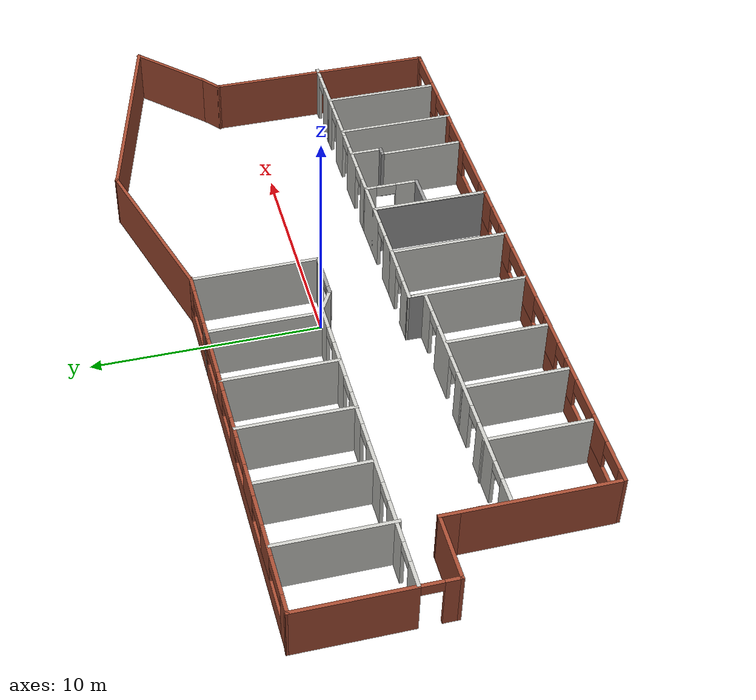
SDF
<sdf version="1.6">
 <world name="__default__">
  <model name="plantaHospital">
   <pose>1.23652 -0.630061 0 0 -0 0</pose>
   <link name="Wall_0">
    <pose>-5.58315 -7.9482 0 0 -0 0</pose>
    <visual name="Wall_0_Visual_0">
     <pose>-8.32751 0 1.25 0 -0 0</pose>
     <geometry><box><size>0.594984 0.15 2.5</size></box></geometry>
     <material>
      <script><uri>file://media/materials/scripts/gazebo.material</uri><name>Gazebo/Bricks</name></script>
      <ambient>1 1 1 1</ambient>
     </material>
    </visual>
    <collision name="Wall_0_Collision_0">
     <geometry><box><size>0.594984 0.15 2.5</size></box></geometry>
     <pose>-8.32751 0 1.25 0 -0 0</pose>
    </collision>
    <visual name="Wall_0_Visual_1">
     <pose>0.297492 0 0.5 0 -0 0</pose>
     <geometry><box><size>16.655 0.15 1</size></box></geometry>
     <material>
      <script><uri>file://media/materials/scripts/gazebo.material</uri><name>Gazebo/Bricks</name></script>
      <ambient>1 1 1 1</ambient>
     </material>
    </visual>
    <collision name="Wall_0_Collision_1">
     <geometry><box><size>16.655 0.15 1</size></box></geometry>
     <pose>0.297492 0 0.5 0 -0 0</pose>
    </collision>
    <visual name="Wall_0_Visual_2">
     <pose>-5.8979 0 1.75 0 -0 0</pose>
     <geometry><box><size>1.44064 0.15 1.5</size></box></geometry>
     <material>
      <script><uri>file://media/materials/scripts/gazebo.material</uri><name>Gazebo/Bricks</name></script>
      <ambient>1 1 1 1</ambient>
     </material>
    </visual>
    <collision name="Wall_0_Collision_2">
     <geometry><box><size>1.44064 0.15 1.5</size></box></geometry>
     <pose>-5.8979 0 1.75 0 -0 0</pose>
    </collision>
    <visual name="Wall_0_Visual_3">
     <pose>-2.67137 0 1.75 0 -0 0</pose>
     <geometry><box><size>1.22519 0.15 1.5</size></box></geometry>
     <material>
      <script><uri>file://media/materials/scripts/gazebo.material</uri><name>Gazebo/Bricks</name></script>
      <ambient>1 1 1 1</ambient>
     </material>
    </visual>
    <collision name="Wall_0_Collision_3">
     <geometry><box><size>1.22519 0.15 1.5</size></box></geometry>
     <pose>-2.67137 0 1.75 0 -0 0</pose>
    </collision>
    <visual name="Wall_0_Visual_4">
     <pose>-0.362931 0 1.75 0 -0 0</pose>
     <geometry><box><size>1.61261 0.15 1.5</size></box></geometry>
     <material>
      <script><uri>file://media/materials/scripts/gazebo.material</uri><name>Gazebo/Bricks</name></script>
      <ambient>1 1 1 1</ambient>
     </material>
    </visual>
    <collision name="Wall_0_Collision_4">
     <geometry><box><size>1.61261 0.15 1.5</size></box></geometry>
     <pose>-0.362931 0 1.75 0 -0 0</pose>
    </collision>
    <visual name="Wall_0_Visual_5">
     <pose>2.42997 0 1.75 0 -0 0</pose>
     <geometry><box><size>1.67518 0.15 1.5</size></box></geometry>
     <material>
      <script><uri>file://media/materials/scripts/gazebo.material</uri><name>Gazebo/Bricks</name></script>
      <ambient>1 1 1 1</ambient>
     </material>
    </visual>
    <collision name="Wall_0_Collision_5">
     <geometry><box><size>1.67518 0.15 1.5</size></box></geometry>
     <pose>2.42997 0 1.75 0 -0 0</pose>
    </collision>
    <visual name="Wall_0_Visual_6">
     <pose>5.5674 0 1.75 0 -0 0</pose>
     <geometry><box><size>1.59168 0.15 1.5</size></box></geometry>
     <material>
      <script><uri>file://media/materials/scripts/gazebo.material</uri><name>Gazebo/Bricks</name></script>
      <ambient>1 1 1 1</ambient>
     </material>
    </visual>
    <collision name="Wall_0_Collision_6">
     <geometry><box><size>1.59168 0.15 1.5</size></box></geometry>
     <pose>5.5674 0 1.75 0 -0 0</pose>
    </collision>
    <visual name="Wall_0_Visual_7">
     <pose>8.07412 0 1.75 0 -0 0</pose>
     <geometry><box><size>1.10176 0.15 1.5</size></box></geometry>
     <material>
      <script><uri>file://media/materials/scripts/gazebo.material</uri><name>Gazebo/Bricks</name></script>
      <ambient>1 1 1 1</ambient>
     </material>
    </visual>
    <collision name="Wall_0_Collision_7">
     <geometry><box><size>1.10176 0.15 1.5</size></box></geometry>
     <pose>8.07412 0 1.75 0 -0 0</pose>
    </collision>
    <visual name="Wall_0_Visual_8">
     <pose>-7.32411 0 2.15 0 -0 0</pose>
     <geometry><box><size>1.4118 0.15 0.7</size></box></geometry>
     <material>
      <script><uri>file://media/materials/scripts/gazebo.material</uri><name>Gazebo/Bricks</name></script>
      <ambient>1 1 1 1</ambient>
     </material>
    </visual>
    <collision name="Wall_0_Collision_8">
     <geometry><box><size>1.4118 0.15 0.7</size></box></geometry>
     <pose>-7.32411 0 2.15 0 -0 0</pose>
    </collision>
    <visual name="Wall_0_Visual_9">
     <pose>-4.23077 0 2.15 0 -0 0</pose>
     <geometry><box><size>1.8936 0.15 0.7</size></box></geometry>
     <material>
      <script><uri>file://media/materials/scripts/gazebo.material</uri><name>Gazebo/Bricks</name></script>
      <ambient>1 1 1 1</ambient>
     </material>
    </visual>
    <collision name="Wall_0_Collision_9">
     <geometry><box><size>1.8936 0.15 0.7</size></box></geometry>
     <pose>-4.23077 0 2.15 0 -0 0</pose>
    </collision>
    <visual name="Wall_0_Visual_10">
     <pose>-1.61401 0 2.15 0 -0 0</pose>
     <geometry><box><size>0.889543 0.15 0.7</size></box></geometry>
     <material>
      <script><uri>file://media/materials/scripts/gazebo.material</uri><name>Gazebo/Bricks</name></script>
      <ambient>1 1 1 1</ambient>
     </material>
    </visual>
    <collision name="Wall_0_Collision_10">
     <geometry><box><size>0.889543 0.15 0.7</size></box></geometry>
     <pose>-1.61401 0 2.15 0 -0 0</pose>
    </collision>
    <visual name="Wall_0_Visual_11">
     <pose>1.01787 0 2.15 0 -0 0</pose>
     <geometry><box><size>1.149 0.15 0.7</size></box></geometry>
     <material>
      <script><uri>file://media/materials/scripts/gazebo.material</uri><name>Gazebo/Bricks</name></script>
      <ambient>1 1 1 1</ambient>
     </material>
    </visual>
    <collision name="Wall_0_Collision_11">
     <geometry><box><size>1.149 0.15 0.7</size></box></geometry>
     <pose>1.01787 0 2.15 0 -0 0</pose>
    </collision>
    <visual name="Wall_0_Visual_12">
     <pose>4.01956 0 2.15 0 -0 0</pose>
     <geometry><box><size>1.504 0.15 0.7</size></box></geometry>
     <material>
      <script><uri>file://media/materials/scripts/gazebo.material</uri><name>Gazebo/Bricks</name></script>
      <ambient>1 1 1 1</ambient>
     </material>
    </visual>
    <collision name="Wall_0_Collision_12">
     <geometry><box><size>1.504 0.15 0.7</size></box></geometry>
     <pose>4.01956 0 2.15 0 -0 0</pose>
    </collision>
    <visual name="Wall_0_Visual_13">
     <pose>6.94324 0 2.15 0 -0 0</pose>
     <geometry><box><size>1.16 0.15 0.7</size></box></geometry>
     <material>
      <script><uri>file://media/materials/scripts/gazebo.material</uri><name>Gazebo/Bricks</name></script>
      <ambient>1 1 1 1</ambient>
     </material>
    </visual>
    <collision name="Wall_0_Collision_13">
     <geometry><box><size>1.16 0.15 0.7</size></box></geometry>
     <pose>6.94324 0 2.15 0 -0 0</pose>
    </collision>
   </link>
   <link name="Wall_1">
    <collision name="Wall_1_Collision">
     <geometry><box><size>5.26208 0.15 2.5</size></box></geometry>
     <pose>0 0 1.25 0 -0 0</pose>
    </collision>
    <visual name="Wall_1_Visual">
     <pose>0 0 1.25 0 -0 0</pose>
     <geometry><box><size>5.26208 0.15 2.5</size></box></geometry>
     <material>
      <script><uri>file://media/materials/scripts/gazebo.material</uri><name>Gazebo/Grey</name></script>
      <ambient>1 1 1 1</ambient>
     </material>
    </visual>
    <pose>2.98099 -5.39218 0 0 -0 1.56154</pose>
   </link>
   <link name="Wall_10">
    <collision name="Wall_10_Collision">
     <geometry><box><size>7.58154 0.15 2.5</size></box></geometry>
     <pose>0 0 1.25 0 -0 0</pose>
    </collision>
    <visual name="Wall_10_Visual">
     <pose>0 0 1.25 0 -0 0</pose>
     <geometry><box><size>7.58154 0.15 2.5</size></box></geometry>
     <material>
      <script><uri>file://media/materials/scripts/gazebo.material</uri><name>Gazebo/Bricks</name></script>
      <ambient>1 1 1 1</ambient>
     </material>
    </visual>
    <pose>4.1166 6.92582 0 0 -0 0.277983</pose>
   </link>
   <link name="Wall_11">
    <collision name="Wall_11_Collision">
     <geometry><box><size>9.75 0.15 2.5</size></box></geometry>
     <pose>0 0 1.25 0 -0 0</pose>
    </collision>
    <visual name="Wall_11_Visual">
     <pose>0 0 1.25 0 -0 0</pose>
     <geometry><box><size>9.75 0.15 2.5</size></box></geometry>
     <material>
      <script><uri>file://media/materials/scripts/gazebo.material</uri><name>Gazebo/Bricks</name></script>
      <ambient>1 1 1 1</ambient>
     </material>
    </visual>
    <pose>12.3261 6.70315 0 0 0 -0.261799</pose>
   </link>
   <link name="Wall_12">
    <collision name="Wall_12_Collision">
     <geometry><box><size>4 0.15 2.5</size></box></geometry>
     <pose>0 0 1.25 0 -0 0</pose>
    </collision>
    <visual name="Wall_12_Visual">
     <pose>0 0 1.25 0 -0 0</pose>
     <geometry><box><size>4 0.15 2.5</size></box></geometry>
     <material>
      <script><uri>file://media/materials/scripts/gazebo.material</uri><name>Gazebo/Bricks</name></script>
      <ambient>1 1 1 1</ambient>
     </material>
    </visual>
    <pose>15.6014 4.09964 0 0 0 -2.35619</pose>
   </link>
   <link name="Wall_13">
    <collision name="Wall_13_Collision">
     <geometry><box><size>1.09421 0.15 2.5</size></box></geometry>
     <pose>0 0 1.25 0 -0 0</pose>
    </collision>
    <visual name="Wall_13_Visual">
     <pose>0 0 1.25 0 -0 0</pose>
     <geometry><box><size>1.09421 0.15 2.5</size></box></geometry>
     <material>
      <script><uri>file://media/materials/scripts/gazebo.material</uri><name>Gazebo/Bricks</name></script>
      <ambient>1 1 1 1</ambient>
     </material>
    </visual>
    <pose>13.8763 2.43768 0 0 0 -2.45088</pose>
   </link>
   <link name="Wall_14">
    <collision name="Wall_14_Collision">
     <geometry><box><size>10.25 0.15 2.5</size></box></geometry>
     <pose>0 0 1.25 0 -0 0</pose>
    </collision>
    <visual name="Wall_14_Visual">
     <pose>0 0 1.25 0 -0 0</pose>
     <geometry><box><size>10.25 0.15 2.5</size></box></geometry>
     <material>
      <script><uri>file://media/materials/scripts/gazebo.material</uri><name>Gazebo/Bricks</name></script>
      <ambient>1 1 1 1</ambient>
     </material>
    </visual>
    <pose>13.5461 -2.91309 0 0 0 -1.5708</pose>
   </link>
   <link name="Wall_15">
    <pose>8.23489 -7.95565 0 0 -0 3.14018</pose>
    <visual name="Wall_15_Visual_0">
     <pose>-5.17388 0 1.25 0 -0 0</pose>
     <geometry><box><size>0.357329 0.15 2.5</size></box></geometry>
     <material>
      <script><uri>file://media/materials/scripts/gazebo.material</uri><name>Gazebo/Bricks</name></script>
      <ambient>1 1 1 1</ambient>
     </material>
    </visual>
    <collision name="Wall_15_Collision_0">
     <geometry><box><size>0.357329 0.15 2.5</size></box></geometry>
     <pose>-5.17388 0 1.25 0 -0 0</pose>
    </collision>
    <visual name="Wall_15_Visual_1">
     <pose>0.178664 0 0.5 0 -0 0</pose>
     <geometry><box><size>10.3478 0.15 1</size></box></geometry>
     <material>
      <script><uri>file://media/materials/scripts/gazebo.material</uri><name>Gazebo/Bricks</name></script>
      <ambient>1 1 1 1</ambient>
     </material>
    </visual>
    <collision name="Wall_15_Collision_1">
     <geometry><box><size>10.3478 0.15 1</size></box></geometry>
     <pose>0.178664 0 0.5 0 -0 0</pose>
    </collision>
    <visual name="Wall_15_Visual_2">
     <pose>-2.66907 0 1.75 0 -0 0</pose>
     <geometry><box><size>1.05359 0.15 1.5</size></box></geometry>
     <material>
      <script><uri>file://media/materials/scripts/gazebo.material</uri><name>Gazebo/Bricks</name></script>
      <ambient>1 1 1 1</ambient>
     </material>
    </visual>
    <collision name="Wall_15_Collision_2">
     <geometry><box><size>1.05359 0.15 1.5</size></box></geometry>
     <pose>-2.66907 0 1.75 0 -0 0</pose>
    </collision>
    <visual name="Wall_15_Visual_3">
     <pose>-0.392324 0 1.75 0 -0 0</pose>
     <geometry><box><size>0.978199 0.15 1.5</size></box></geometry>
     <material>
      <script><uri>file://media/materials/scripts/gazebo.material</uri><name>Gazebo/Bricks</name></script>
      <ambient>1 1 1 1</ambient>
     </material>
    </visual>
    <collision name="Wall_15_Collision_3">
     <geometry><box><size>0.978199 0.15 1.5</size></box></geometry>
     <pose>-0.392324 0 1.75 0 -0 0</pose>
    </collision>
    <visual name="Wall_15_Visual_4">
     <pose>1.8838 0 1.75 0 -0 0</pose>
     <geometry><box><size>0.67604 0.15 1.5</size></box></geometry>
     <material>
      <script><uri>file://media/materials/scripts/gazebo.material</uri><name>Gazebo/Bricks</name></script>
      <ambient>1 1 1 1</ambient>
     </material>
    </visual>
    <collision name="Wall_15_Collision_4">
     <geometry><box><size>0.67604 0.15 1.5</size></box></geometry>
     <pose>1.8838 0 1.75 0 -0 0</pose>
    </collision>
    <visual name="Wall_15_Visual_5">
     <pose>4.93818 0 1.75 0 -0 0</pose>
     <geometry><box><size>0.828732 0.15 1.5</size></box></geometry>
     <material>
      <script><uri>file://media/materials/scripts/gazebo.material</uri><name>Gazebo/Bricks</name></script>
      <ambient>1 1 1 1</ambient>
     </material>
    </visual>
    <collision name="Wall_15_Collision_5">
     <geometry><box><size>0.828732 0.15 1.5</size></box></geometry>
     <pose>4.93818 0 1.75 0 -0 0</pose>
    </collision>
    <visual name="Wall_15_Visual_6">
     <pose>-4.09555 0 2.15 0 -0 0</pose>
     <geometry><box><size>1.79935 0.15 0.7</size></box></geometry>
     <material>
      <script><uri>file://media/materials/scripts/gazebo.material</uri><name>Gazebo/Bricks</name></script>
      <ambient>1 1 1 1</ambient>
     </material>
    </visual>
    <collision name="Wall_15_Collision_6">
     <geometry><box><size>1.79935 0.15 0.7</size></box></geometry>
     <pose>-4.09555 0 2.15 0 -0 0</pose>
    </collision>
    <visual name="Wall_15_Visual_7">
     <pose>-1.51185 0 2.15 0 -0 0</pose>
     <geometry><box><size>1.26085 0.15 0.7</size></box></geometry>
     <material>
      <script><uri>file://media/materials/scripts/gazebo.material</uri><name>Gazebo/Bricks</name></script>
      <ambient>1 1 1 1</ambient>
     </material>
    </visual>
    <collision name="Wall_15_Collision_7">
     <geometry><box><size>1.26085 0.15 0.7</size></box></geometry>
     <pose>-1.51185 0 2.15 0 -0 0</pose>
    </collision>
    <visual name="Wall_15_Visual_8">
     <pose>0.821275 0 2.15 0 -0 0</pose>
     <geometry><box><size>1.449 0.15 0.7</size></box></geometry>
     <material>
      <script><uri>file://media/materials/scripts/gazebo.material</uri><name>Gazebo/Bricks</name></script>
      <ambient>1 1 1 1</ambient>
     </material>
    </visual>
    <collision name="Wall_15_Collision_8">
     <geometry><box><size>1.449 0.15 0.7</size></box></geometry>
     <pose>0.821275 0 2.15 0 -0 0</pose>
    </collision>
    <visual name="Wall_15_Visual_9">
     <pose>3.37282 0 2.15 0 -0 0</pose>
     <geometry><box><size>2.302 0.15 0.7</size></box></geometry>
     <material>
      <script><uri>file://media/materials/scripts/gazebo.material</uri><name>Gazebo/Bricks</name></script>
      <ambient>1 1 1 1</ambient>
     </material>
    </visual>
    <collision name="Wall_15_Collision_9">
     <geometry><box><size>2.302 0.15 0.7</size></box></geometry>
     <pose>3.37282 0 2.15 0 -0 0</pose>
    </collision>
   </link>
   <link name="Wall_19">
    <collision name="Wall_19_Collision">
     <geometry><box><size>5 0.15 2.5</size></box></geometry>
     <pose>0 0 1.25 0 -0 0</pose>
    </collision>
    <visual name="Wall_19_Visual">
     <pose>0 0 1.25 0 -0 0</pose>
     <geometry><box><size>5 0.15 2.5</size></box></geometry>
     <material>
      <script><uri>file://media/materials/scripts/gazebo.material</uri><name>Gazebo/CeilingTiled</name></script>
      <ambient>1 1 1 1</ambient>
     </material>
    </visual>
    <pose>-2.78323 3.42673 0 0 0 -1.5708</pose>
   </link>
   <link name="Wall_23">
    <collision name="Wall_23_Collision">
     <geometry><box><size>5.5 0.15 2.5</size></box></geometry>
     <pose>0 0 1.25 0 -0 0</pose>
    </collision>
    <visual name="Wall_23_Visual">
     <pose>0 0 1.25 0 -0 0</pose>
     <geometry><box><size>5.5 0.15 2.5</size></box></geometry>
     <material>
      <script><uri>file://media/materials/scripts/gazebo.material</uri><name>Gazebo/CeilingTiled</name></script>
      <ambient>1 1 1 1</ambient>
     </material>
    </visual>
    <pose>0.459625 3.04374 0 0 -0 1.5708</pose>
   </link>
   <link name="Wall_26">
    <pose>-0.590375 0.368744 0 0 -0 3.14159</pose>
    <visual name="Wall_26_Visual_0">
     <pose>-0.652263 0 1.25 0 -0 0</pose>
     <geometry><box><size>0.945474 0.15 2.5</size></box></geometry>
     <material>
      <script><uri>file://media/materials/scripts/gazebo.material</uri><name>Gazebo/Grey</name></script>
      <ambient>1 1 1 1</ambient>
     </material>
    </visual>
    <collision name="Wall_26_Collision_0">
     <geometry><box><size>0.945474 0.15 2.5</size></box></geometry>
     <pose>-0.652263 0 1.25 0 -0 0</pose>
    </collision>
    <visual name="Wall_26_Visual_1">
     <pose>0.922737 0 1.25 0 -0 0</pose>
     <geometry><box><size>0.404526 0.15 2.5</size></box></geometry>
     <material>
      <script><uri>file://media/materials/scripts/gazebo.material</uri><name>Gazebo/Grey</name></script>
      <ambient>1 1 1 1</ambient>
     </material>
    </visual>
    <collision name="Wall_26_Collision_1">
     <geometry><box><size>0.404526 0.15 2.5</size></box></geometry>
     <pose>0.922737 0 1.25 0 -0 0</pose>
    </collision>
    <visual name="Wall_26_Visual_2">
     <pose>0.270474 0 2.25 0 -0 0</pose>
     <geometry><box><size>0.9 0.15 0.5</size></box></geometry>
     <material>
      <script><uri>file://media/materials/scripts/gazebo.material</uri><name>Gazebo/Grey</name></script>
      <ambient>1 1 1 1</ambient>
     </material>
    </visual>
    <collision name="Wall_26_Collision_2">
     <geometry><box><size>0.9 0.15 0.5</size></box></geometry>
     <pose>0.270474 0 2.25 0 -0 0</pose>
    </collision>
   </link>
   <link name="Wall_27">
    <collision name="Wall_27_Collision">
     <geometry><box><size>1.25 0.15 2.5</size></box></geometry>
     <pose>0 0 1.25 0 -0 0</pose>
    </collision>
    <visual name="Wall_27_Visual">
     <pose>0 0 1.25 0 -0 0</pose>
     <geometry><box><size>1.25 0.15 2.5</size></box></geometry>
     <material>
      <script><uri>file://media/materials/scripts/gazebo.material</uri><name>Gazebo/CeilingTiled</name></script>
      <ambient>1 1 1 1</ambient>
     </material>
    </visual>
    <pose>-2.11669 0.643744 0 0 -0 2.61799</pose>
   </link>
   <link name="Wall_28">
    <pose>-9.768 0.918744 0 0 -0 3.14159</pose>
    <visual name="Wall_28_Visual_0">
     <pose>-6.67188 0 1.25 0 -0 0</pose>
     <geometry><box><size>1.15625 0.15 2.5</size></box></geometry>
     <material>
      <script><uri>file://media/materials/scripts/gazebo.material</uri><name>Gazebo/CeilingTiled</name></script>
      <ambient>1 1 1 1</ambient>
     </material>
    </visual>
    <collision name="Wall_28_Collision_0">
     <geometry><box><size>1.15625 0.15 2.5</size></box></geometry>
     <pose>-6.67188 0 1.25 0 -0 0</pose>
    </collision>
    <visual name="Wall_28_Visual_1">
     <pose>-4.23031 0 1.25 0 -0 0</pose>
     <geometry><box><size>1.92688 0.15 2.5</size></box></geometry>
     <material>
      <script><uri>file://media/materials/scripts/gazebo.material</uri><name>Gazebo/CeilingTiled</name></script>
      <ambient>1 1 1 1</ambient>
     </material>
    </visual>
    <collision name="Wall_28_Collision_1">
     <geometry><box><size>1.92688 0.15 2.5</size></box></geometry>
     <pose>-4.23031 0 1.25 0 -0 0</pose>
    </collision>
    <visual name="Wall_28_Visual_2">
     <pose>-1.50521 0 1.25 0 -0 0</pose>
     <geometry><box><size>1.72333 0.15 2.5</size></box></geometry>
     <material>
      <script><uri>file://media/materials/scripts/gazebo.material</uri><name>Gazebo/CeilingTiled</name></script>
      <ambient>1 1 1 1</ambient>
     </material>
    </visual>
    <collision name="Wall_28_Collision_2">
     <geometry><box><size>1.72333 0.15 2.5</size></box></geometry>
     <pose>-1.50521 0 1.25 0 -0 0</pose>
    </collision>
    <visual name="Wall_28_Visual_3">
     <pose>1.30358 0 1.25 0 -0 0</pose>
     <geometry><box><size>2.09425 0.15 2.5</size></box></geometry>
     <material>
      <script><uri>file://media/materials/scripts/gazebo.material</uri><name>Gazebo/CeilingTiled</name></script>
      <ambient>1 1 1 1</ambient>
     </material>
    </visual>
    <collision name="Wall_28_Collision_3">
     <geometry><box><size>2.09425 0.15 2.5</size></box></geometry>
     <pose>1.30358 0 1.25 0 -0 0</pose>
    </collision>
    <visual name="Wall_28_Visual_4">
     <pose>4.23055 0 1.25 0 -0 0</pose>
     <geometry><box><size>1.95968 0.15 2.5</size></box></geometry>
     <material>
      <script><uri>file://media/materials/scripts/gazebo.material</uri><name>Gazebo/CeilingTiled</name></script>
      <ambient>1 1 1 1</ambient>
     </material>
    </visual>
    <collision name="Wall_28_Collision_4">
     <geometry><box><size>1.95968 0.15 2.5</size></box></geometry>
     <pose>4.23055 0 1.25 0 -0 0</pose>
    </collision>
    <visual name="Wall_28_Visual_5">
     <pose>6.6802 0 1.25 0 -0 0</pose>
     <geometry><box><size>1.13961 0.15 2.5</size></box></geometry>
     <material>
      <script><uri>file://media/materials/scripts/gazebo.material</uri><name>Gazebo/CeilingTiled</name></script>
      <ambient>1 1 1 1</ambient>
     </material>
    </visual>
    <collision name="Wall_28_Collision_5">
     <geometry><box><size>1.13961 0.15 2.5</size></box></geometry>
     <pose>6.6802 0 1.25 0 -0 0</pose>
    </collision>
    <visual name="Wall_28_Visual_6">
     <pose>-5.64375 0 2.25 0 -0 0</pose>
     <geometry><box><size>0.9 0.15 0.5</size></box></geometry>
     <material>
      <script><uri>file://media/materials/scripts/gazebo.material</uri><name>Gazebo/CeilingTiled</name></script>
      <ambient>1 1 1 1</ambient>
     </material>
    </visual>
    <collision name="Wall_28_Collision_6">
     <geometry><box><size>0.9 0.15 0.5</size></box></geometry>
     <pose>-5.64375 0 2.25 0 -0 0</pose>
    </collision>
    <visual name="Wall_28_Visual_7">
     <pose>-2.81687 0 2.25 0 -0 0</pose>
     <geometry><box><size>0.9 0.15 0.5</size></box></geometry>
     <material>
      <script><uri>file://media/materials/scripts/gazebo.material</uri><name>Gazebo/CeilingTiled</name></script>
      <ambient>1 1 1 1</ambient>
     </material>
    </visual>
    <collision name="Wall_28_Collision_7">
     <geometry><box><size>0.9 0.15 0.5</size></box></geometry>
     <pose>-2.81687 0 2.25 0 -0 0</pose>
    </collision>
    <visual name="Wall_28_Visual_8">
     <pose>-0.193541 0 2.25 0 -0 0</pose>
     <geometry><box><size>0.9 0.15 0.5</size></box></geometry>
     <material>
      <script><uri>file://media/materials/scripts/gazebo.material</uri><name>Gazebo/CeilingTiled</name></script>
      <ambient>1 1 1 1</ambient>
     </material>
    </visual>
    <collision name="Wall_28_Collision_8">
     <geometry><box><size>0.9 0.15 0.5</size></box></geometry>
     <pose>-0.193541 0 2.25 0 -0 0</pose>
    </collision>
    <visual name="Wall_28_Visual_9">
     <pose>2.80071 0 2.25 0 -0 0</pose>
     <geometry><box><size>0.9 0.15 0.5</size></box></geometry>
     <material>
      <script><uri>file://media/materials/scripts/gazebo.material</uri><name>Gazebo/CeilingTiled</name></script>
      <ambient>1 1 1 1</ambient>
     </material>
    </visual>
    <collision name="Wall_28_Collision_9">
     <geometry><box><size>0.9 0.15 0.5</size></box></geometry>
     <pose>2.80071 0 2.25 0 -0 0</pose>
    </collision>
    <visual name="Wall_28_Visual_10">
     <pose>5.66039 0 2.25 0 -0 0</pose>
     <geometry><box><size>0.9 0.15 0.5</size></box></geometry>
     <material>
      <script><uri>file://media/materials/scripts/gazebo.material</uri><name>Gazebo/CeilingTiled</name></script>
      <ambient>1 1 1 1</ambient>
     </material>
    </visual>
    <collision name="Wall_28_Collision_10">
     <geometry><box><size>0.9 0.15 0.5</size></box></geometry>
     <pose>5.66039 0 2.25 0 -0 0</pose>
    </collision>
   </link>
   <link name="Wall_32">
    <pose>6.91709 -2.83087 0 0 -0 0</pose>
    <visual name="Wall_32_Visual_0">
     <pose>-6.2988 0 1.25 0 -0 0</pose>
     <geometry><box><size>1.15239 0.15 2.5</size></box></geometry>
     <material>
      <script><uri>file://media/materials/scripts/gazebo.material</uri><name>Gazebo/CeilingTiled</name></script>
      <ambient>1 1 1 1</ambient>
     </material>
    </visual>
    <collision name="Wall_32_Collision_0">
     <geometry><box><size>1.15239 0.15 2.5</size></box></geometry>
     <pose>-6.2988 0 1.25 0 -0 0</pose>
    </collision>
    <visual name="Wall_32_Visual_1">
     <pose>-3.29044 0 1.25 0 -0 0</pose>
     <geometry><box><size>3.06434 0.15 2.5</size></box></geometry>
     <material>
      <script><uri>file://media/materials/scripts/gazebo.material</uri><name>Gazebo/CeilingTiled</name></script>
      <ambient>1 1 1 1</ambient>
     </material>
    </visual>
    <collision name="Wall_32_Collision_1">
     <geometry><box><size>3.06434 0.15 2.5</size></box></geometry>
     <pose>-3.29044 0 1.25 0 -0 0</pose>
    </collision>
    <visual name="Wall_32_Visual_2">
     <pose>-0.1285 0 1.25 0 -0 0</pose>
     <geometry><box><size>1.45954 0.15 2.5</size></box></geometry>
     <material>
      <script><uri>file://media/materials/scripts/gazebo.material</uri><name>Gazebo/CeilingTiled</name></script>
      <ambient>1 1 1 1</ambient>
     </material>
    </visual>
    <collision name="Wall_32_Collision_2">
     <geometry><box><size>1.45954 0.15 2.5</size></box></geometry>
     <pose>-0.1285 0 1.25 0 -0 0</pose>
    </collision>
    <visual name="Wall_32_Visual_3">
     <pose>2.11368 0 1.25 0 -0 0</pose>
     <geometry><box><size>1.22482 0.15 2.5</size></box></geometry>
     <material>
      <script><uri>file://media/materials/scripts/gazebo.material</uri><name>Gazebo/CeilingTiled</name></script>
      <ambient>1 1 1 1</ambient>
     </material>
    </visual>
    <collision name="Wall_32_Collision_3">
     <geometry><box><size>1.22482 0.15 2.5</size></box></geometry>
     <pose>2.11368 0 1.25 0 -0 0</pose>
    </collision>
    <visual name="Wall_32_Visual_4">
     <pose>4.45352 0 1.25 0 -0 0</pose>
     <geometry><box><size>1.65485 0.15 2.5</size></box></geometry>
     <material>
      <script><uri>file://media/materials/scripts/gazebo.material</uri><name>Gazebo/CeilingTiled</name></script>
      <ambient>1 1 1 1</ambient>
     </material>
    </visual>
    <collision name="Wall_32_Collision_4">
     <geometry><box><size>1.65485 0.15 2.5</size></box></geometry>
     <pose>4.45352 0 1.25 0 -0 0</pose>
    </collision>
    <visual name="Wall_32_Visual_5">
     <pose>6.52797 0 1.25 0 -0 0</pose>
     <geometry><box><size>0.69406 0.15 2.5</size></box></geometry>
     <material>
      <script><uri>file://media/materials/scripts/gazebo.material</uri><name>Gazebo/CeilingTiled</name></script>
      <ambient>1 1 1 1</ambient>
     </material>
    </visual>
    <collision name="Wall_32_Collision_5">
     <geometry><box><size>0.69406 0.15 2.5</size></box></geometry>
     <pose>6.52797 0 1.25 0 -0 0</pose>
    </collision>
    <visual name="Wall_32_Visual_6">
     <pose>-5.27261 0 2.25 0 -0 0</pose>
     <geometry><box><size>0.9 0.15 0.5</size></box></geometry>
     <material>
      <script><uri>file://media/materials/scripts/gazebo.material</uri><name>Gazebo/CeilingTiled</name></script>
      <ambient>1 1 1 1</ambient>
     </material>
    </visual>
    <collision name="Wall_32_Collision_6">
     <geometry><box><size>0.9 0.15 0.5</size></box></geometry>
     <pose>-5.27261 0 2.25 0 -0 0</pose>
    </collision>
    <visual name="Wall_32_Visual_7">
     <pose>-1.30827 0 2.25 0 -0 0</pose>
     <geometry><box><size>0.9 0.15 0.5</size></box></geometry>
     <material>
      <script><uri>file://media/materials/scripts/gazebo.material</uri><name>Gazebo/CeilingTiled</name></script>
      <ambient>1 1 1 1</ambient>
     </material>
    </visual>
    <collision name="Wall_32_Collision_7">
     <geometry><box><size>0.9 0.15 0.5</size></box></geometry>
     <pose>-1.30827 0 2.25 0 -0 0</pose>
    </collision>
    <visual name="Wall_32_Visual_8">
     <pose>1.05127 0 2.25 0 -0 0</pose>
     <geometry><box><size>0.9 0.15 0.5</size></box></geometry>
     <material>
      <script><uri>file://media/materials/scripts/gazebo.material</uri><name>Gazebo/CeilingTiled</name></script>
      <ambient>1 1 1 1</ambient>
     </material>
    </visual>
    <collision name="Wall_32_Collision_8">
     <geometry><box><size>0.9 0.15 0.5</size></box></geometry>
     <pose>1.05127 0 2.25 0 -0 0</pose>
    </collision>
    <visual name="Wall_32_Visual_9">
     <pose>3.17609 0 2.25 0 -0 0</pose>
     <geometry><box><size>0.9 0.15 0.5</size></box></geometry>
     <material>
      <script><uri>file://media/materials/scripts/gazebo.material</uri><name>Gazebo/CeilingTiled</name></script>
      <ambient>1 1 1 1</ambient>
     </material>
    </visual>
    <collision name="Wall_32_Collision_9">
     <geometry><box><size>0.9 0.15 0.5</size></box></geometry>
     <pose>3.17609 0 2.25 0 -0 0</pose>
    </collision>
    <visual name="Wall_32_Visual_10">
     <pose>5.73094 0 2.25 0 -0 0</pose>
     <geometry><box><size>0.9 0.15 0.5</size></box></geometry>
     <material>
      <script><uri>file://media/materials/scripts/gazebo.material</uri><name>Gazebo/CeilingTiled</name></script>
      <ambient>1 1 1 1</ambient>
     </material>
    </visual>
    <collision name="Wall_32_Collision_10">
     <geometry><box><size>0.9 0.15 0.5</size></box></geometry>
     <pose>5.73094 0 2.25 0 -0 0</pose>
    </collision>
   </link>
   <link name="Wall_34">
    <collision name="Wall_34_Collision">
     <geometry><box><size>5.25 0.15 2.5</size></box></geometry>
     <pose>0 0 1.25 0 -0 0</pose>
    </collision>
    <visual name="Wall_34_Visual">
     <pose>0 0 1.25 0 -0 0</pose>
     <geometry><box><size>5.25 0.15 2.5</size></box></geometry>
     <material>
      <script><uri>file://media/materials/scripts/gazebo.material</uri><name>Gazebo/CeilingTiled</name></script>
      <ambient>1 1 1 1</ambient>
     </material>
    </visual>
    <pose>3.01275 -5.38087 0 0 0 -1.5708</pose>
   </link>
   <link name="Wall_36">
    <collision name="Wall_36_Collision">
     <geometry><box><size>1.5 0.15 2.5</size></box></geometry>
     <pose>0 0 1.25 0 -0 0</pose>
    </collision>
    <visual name="Wall_36_Visual">
     <pose>0 0 1.25 0 -0 0</pose>
     <geometry><box><size>1.5 0.15 2.5</size></box></geometry>
     <material>
      <script><uri>file://media/materials/scripts/gazebo.material</uri><name>Gazebo/CeilingTiled</name></script>
      <ambient>1 1 1 1</ambient>
     </material>
    </visual>
    <pose>7.05623 -3.53195 0 0 0 -1.5708</pose>
   </link>
   <link name="Wall_37">
    <collision name="Wall_37_Collision">
     <geometry><box><size>0.5 0.15 2.5</size></box></geometry>
     <pose>0 0 1.25 0 -0 0</pose>
    </collision>
    <visual name="Wall_37_Visual">
     <pose>0 0 1.25 0 -0 0</pose>
     <geometry><box><size>0.5 0.15 2.5</size></box></geometry>
     <material>
      <script><uri>file://media/materials/scripts/gazebo.material</uri><name>Gazebo/Grey</name></script>
      <ambient>1 1 1 1</ambient>
     </material>
    </visual>
    <pose>6.88123 -4.20695 0 0 -0 3.14159</pose>
   </link>
   <link name="Wall_38">
    <collision name="Wall_38_Collision">
     <geometry><box><size>3.75 0.15 2.5</size></box></geometry>
     <pose>0 0 1.25 0 -0 0</pose>
    </collision>
    <visual name="Wall_38_Visual">
     <pose>0 0 1.25 0 -0 0</pose>
     <geometry><box><size>3.75 0.15 2.5</size></box></geometry>
     <material>
      <script><uri>file://media/materials/scripts/gazebo.material</uri><name>Gazebo/CeilingTiled</name></script>
      <ambient>1 1 1 1</ambient>
     </material>
    </visual>
    <pose>6.70623 -6.00695 0 0 0 -1.5708</pose>
   </link>
   <link name="Wall_40">
    <collision name="Wall_40_Collision">
     <geometry><box><size>5.25 0.15 2.5</size></box></geometry>
     <pose>0 0 1.25 0 -0 0</pose>
    </collision>
    <visual name="Wall_40_Visual">
     <pose>0 0 1.25 0 -0 0</pose>
     <geometry><box><size>5.25 0.15 2.5</size></box></geometry>
     <material>
      <script><uri>file://media/materials/scripts/gazebo.material</uri><name>Gazebo/CeilingTiled</name></script>
      <ambient>1 1 1 1</ambient>
     </material>
    </visual>
    <pose>8.72579 -5.40695 0 0 0 -1.5708</pose>
   </link>
   <link name="Wall_42">
    <collision name="Wall_42_Collision">
     <geometry><box><size>5.25 0.15 2.5</size></box></geometry>
     <pose>0 0 1.25 0 -0 0</pose>
    </collision>
    <visual name="Wall_42_Visual">
     <pose>0 0 1.25 0 -0 0</pose>
     <geometry><box><size>5.25 0.15 2.5</size></box></geometry>
     <material>
      <script><uri>file://media/materials/scripts/gazebo.material</uri><name>Gazebo/CeilingTiled</name></script>
      <ambient>1 1 1 1</ambient>
     </material>
    </visual>
    <pose>11.2109 -5.3727 0 0 0 -1.5708</pose>
   </link>
   <link name="Wall_44">
    <collision name="Wall_44_Collision">
     <geometry><box><size>1.5 0.15 2.5</size></box></geometry>
     <pose>0 0 1.25 0 -0 0</pose>
    </collision>
    <visual name="Wall_44_Visual">
     <pose>0 0 1.25 0 -0 0</pose>
     <geometry><box><size>1.5 0.15 2.5</size></box></geometry>
     <material>
      <script><uri>file://media/materials/scripts/gazebo.material</uri><name>Gazebo/Grey</name></script>
      <ambient>1 1 1 1</ambient>
     </material>
    </visual>
    <pose>3.7921 -5.17869 0 0 -0 0</pose>
   </link>
   <link name="Wall_45">
    <pose>4.46709 -4.00369 0 0 -0 1.5708</pose>
    <visual name="Wall_45_Visual_0">
     <pose>-0.726255 0 1.25 0 -0 0</pose>
     <geometry><box><size>1.04749 0.15 2.5</size></box></geometry>
     <material>
      <script><uri>file://media/materials/scripts/gazebo.material</uri><name>Gazebo/CeilingTiled</name></script>
      <ambient>1 1 1 1</ambient>
     </material>
    </visual>
    <collision name="Wall_45_Collision_0">
     <geometry><box><size>1.04749 0.15 2.5</size></box></geometry>
     <pose>-0.726255 0 1.25 0 -0 0</pose>
    </collision>
    <visual name="Wall_45_Visual_1">
     <pose>0.973745 0 1.25 0 -0 0</pose>
     <geometry><box><size>0.55251 0.15 2.5</size></box></geometry>
     <material>
      <script><uri>file://media/materials/scripts/gazebo.material</uri><name>Gazebo/CeilingTiled</name></script>
      <ambient>1 1 1 1</ambient>
     </material>
    </visual>
    <collision name="Wall_45_Collision_1">
     <geometry><box><size>0.55251 0.15 2.5</size></box></geometry>
     <pose>0.973745 0 1.25 0 -0 0</pose>
    </collision>
    <visual name="Wall_45_Visual_2">
     <pose>0.24749 0 2.25 0 -0 0</pose>
     <geometry><box><size>0.9 0.15 0.5</size></box></geometry>
     <material>
      <script><uri>file://media/materials/scripts/gazebo.material</uri><name>Gazebo/CeilingTiled</name></script>
      <ambient>1 1 1 1</ambient>
     </material>
    </visual>
    <collision name="Wall_45_Collision_2">
     <geometry><box><size>0.9 0.15 0.5</size></box></geometry>
     <pose>0.24749 0 2.25 0 -0 0</pose>
    </collision>
   </link>
   <link name="Wall_50">
    <collision name="Wall_50_Collision">
     <geometry><box><size>4.5 0.15 2.5</size></box></geometry>
     <pose>0 0 1.25 0 -0 0</pose>
    </collision>
    <visual name="Wall_50_Visual">
     <pose>0 0 1.25 0 -0 0</pose>
     <geometry><box><size>4.5 0.15 2.5</size></box></geometry>
     <material>
      <script><uri>file://media/materials/scripts/gazebo.material</uri><name>Gazebo/CeilingTiled</name></script>
      <ambient>1 1 1 1</ambient>
     </material>
    </visual>
    <pose>-8.20464 -5.645 0 0 -0 1.5708</pose>
   </link>
   <link name="Wall_52">
    <collision name="Wall_52_Collision">
     <geometry><box><size>4.5 0.15 2.5</size></box></geometry>
     <pose>0 0 1.25 0 -0 0</pose>
    </collision>
    <visual name="Wall_52_Visual">
     <pose>0 0 1.25 0 -0 0</pose>
     <geometry><box><size>4.5 0.15 2.5</size></box></geometry>
     <material>
      <script><uri>file://media/materials/scripts/gazebo.material</uri><name>Gazebo/CeilingTiled</name></script>
      <ambient>1 1 1 1</ambient>
     </material>
    </visual>
    <pose>-5.64747 -5.75045 0 0 -0 1.5708</pose>
   </link>
   <link name="Wall_54">
    <collision name="Wall_54_Collision">
     <geometry><box><size>5.25 0.15 2.5</size></box></geometry>
     <pose>0 0 1.25 0 -0 0</pose>
    </collision>
    <visual name="Wall_54_Visual">
     <pose>0 0 1.25 0 -0 0</pose>
     <geometry><box><size>5.25 0.15 2.5</size></box></geometry>
     <material>
      <script><uri>file://media/materials/scripts/gazebo.material</uri><name>Gazebo/CeilingTiled</name></script>
      <ambient>1 1 1 1</ambient>
     </material>
    </visual>
    <pose>-2.72638 -5.34174 0 0 -0 1.5708</pose>
   </link>
   <link name="Wall_56">
    <collision name="Wall_56_Collision">
     <geometry><box><size>5 0.15 2.5</size></box></geometry>
     <pose>0 0 1.25 0 -0 0</pose>
    </collision>
    <visual name="Wall_56_Visual">
     <pose>0 0 1.25 0 -0 0</pose>
     <geometry><box><size>5 0.15 2.5</size></box></geometry>
     <material>
      <script><uri>file://media/materials/scripts/gazebo.material</uri><name>Gazebo/CeilingTiled</name></script>
      <ambient>1 1 1 1</ambient>
     </material>
    </visual>
    <pose>-14.022 3.23326 0 0 0 -1.5708</pose>
   </link>
   <link name="Wall_58">
    <collision name="Wall_58_Collision">
     <geometry><box><size>4.75 0.15 2.5</size></box></geometry>
     <pose>0 0 1.25 0 -0 0</pose>
    </collision>
    <visual name="Wall_58_Visual">
     <pose>0 0 1.25 0 -0 0</pose>
     <geometry><box><size>4.75 0.15 2.5</size></box></geometry>
     <material>
      <script><uri>file://media/materials/scripts/gazebo.material</uri><name>Gazebo/CeilingTiled</name></script>
      <ambient>1 1 1 1</ambient>
     </material>
    </visual>
    <pose>-11.0228 3.35372 0 0 0 -1.5708</pose>
   </link>
   <link name="Wall_6">
    <collision name="Wall_6_Collision">
     <geometry><box><size>1.75 0.15 2.5</size></box></geometry>
     <pose>0 0 1.25 0 -0 0</pose>
    </collision>
    <visual name="Wall_6_Visual">
     <pose>0 0 1.25 0 -0 0</pose>
     <geometry><box><size>1.75 0.15 2.5</size></box></geometry>
     <material>
      <script><uri>file://media/materials/scripts/gazebo.material</uri><name>Gazebo/Bricks</name></script>
      <ambient>1 1 1 1</ambient>
     </material>
    </visual>
    <pose>-14.1523 -1.48625 0 0 -0 1.58268</pose>
   </link>
   <link name="Wall_60">
    <collision name="Wall_60_Collision">
     <geometry><box><size>5 0.15 2.5</size></box></geometry>
     <pose>0 0 1.25 0 -0 0</pose>
    </collision>
    <visual name="Wall_60_Visual">
     <pose>0 0 1.25 0 -0 0</pose>
     <geometry><box><size>5 0.15 2.5</size></box></geometry>
     <material>
      <script><uri>file://media/materials/scripts/gazebo.material</uri><name>Gazebo/CeilingTiled</name></script>
      <ambient>1 1 1 1</ambient>
     </material>
    </visual>
    <pose>-8.20623 3.32991 0 0 0 -1.5708</pose>
   </link>
   <link name="Wall_62">
    <collision name="Wall_62_Collision">
     <geometry><box><size>5 0.15 2.5</size></box></geometry>
     <pose>0 0 1.25 0 -0 0</pose>
    </collision>
    <visual name="Wall_62_Visual">
     <pose>0 0 1.25 0 -0 0</pose>
     <geometry><box><size>5 0.15 2.5</size></box></geometry>
     <material>
      <script><uri>file://media/materials/scripts/gazebo.material</uri><name>Gazebo/CeilingTiled</name></script>
      <ambient>1 1 1 1</ambient>
     </material>
    </visual>
    <pose>-5.58377 3.38542 0 0 0 -1.5708</pose>
   </link>
   <link name="Wall_66">
    <collision name="Wall_66_Collision">
     <geometry><box><size>7.25 0.15 2.5</size></box></geometry>
     <pose>0 0 1.25 0 -0 0</pose>
    </collision>
    <visual name="Wall_66_Visual">
     <pose>0 0 1.25 0 -0 0</pose>
     <geometry><box><size>7.25 0.15 2.5</size></box></geometry>
     <material>
      <script><uri>file://media/materials/scripts/gazebo.material</uri><name>Gazebo/Bricks</name></script>
      <ambient>1 1 1 1</ambient>
     </material>
    </visual>
    <pose>-14.1523 -4.23625 0 0 0 -1.5708</pose>
   </link>
   <link name="Wall_69">
    <pose>-8.41154 -3.47904 0 0 -0 0</pose>
    <visual name="Wall_69_Visual_0">
     <pose>-5.17859 0 1.25 0 -0 0</pose>
     <geometry><box><size>1.14282 0.15 2.5</size></box></geometry>
     <material>
      <script><uri>file://media/materials/scripts/gazebo.material</uri><name>Gazebo/CeilingTiled</name></script>
      <ambient>1 1 1 1</ambient>
     </material>
    </visual>
    <collision name="Wall_69_Collision_0">
     <geometry><box><size>1.14282 0.15 2.5</size></box></geometry>
     <pose>-5.17859 0 1.25 0 -0 0</pose>
    </collision>
    <visual name="Wall_69_Visual_1">
     <pose>-2.70225 0 1.25 0 -0 0</pose>
     <geometry><box><size>2.00986 0.15 2.5</size></box></geometry>
     <material>
      <script><uri>file://media/materials/scripts/gazebo.material</uri><name>Gazebo/CeilingTiled</name></script>
      <ambient>1 1 1 1</ambient>
     </material>
    </visual>
    <collision name="Wall_69_Collision_1">
     <geometry><box><size>2.00986 0.15 2.5</size></box></geometry>
     <pose>-2.70225 0 1.25 0 -0 0</pose>
    </collision>
    <visual name="Wall_69_Visual_2">
     <pose>0.123504 0 1.25 0 -0 0</pose>
     <geometry><box><size>1.84164 0.15 2.5</size></box></geometry>
     <material>
      <script><uri>file://media/materials/scripts/gazebo.material</uri><name>Gazebo/CeilingTiled</name></script>
      <ambient>1 1 1 1</ambient>
     </material>
    </visual>
    <collision name="Wall_69_Collision_2">
     <geometry><box><size>1.84164 0.15 2.5</size></box></geometry>
     <pose>0.123504 0 1.25 0 -0 0</pose>
    </collision>
    <visual name="Wall_69_Visual_3">
     <pose>2.83999 0 1.25 0 -0 0</pose>
     <geometry><box><size>1.79134 0.15 2.5</size></box></geometry>
     <material>
      <script><uri>file://media/materials/scripts/gazebo.material</uri><name>Gazebo/CeilingTiled</name></script>
      <ambient>1 1 1 1</ambient>
     </material>
    </visual>
    <collision name="Wall_69_Collision_3">
     <geometry><box><size>1.79134 0.15 2.5</size></box></geometry>
     <pose>2.83999 0 1.25 0 -0 0</pose>
    </collision>
    <visual name="Wall_69_Visual_4">
     <pose>5.19283 0 1.25 0 -0 0</pose>
     <geometry><box><size>1.11434 0.15 2.5</size></box></geometry>
     <material>
      <script><uri>file://media/materials/scripts/gazebo.material</uri><name>Gazebo/CeilingTiled</name></script>
      <ambient>1 1 1 1</ambient>
     </material>
    </visual>
    <collision name="Wall_69_Collision_4">
     <geometry><box><size>1.11434 0.15 2.5</size></box></geometry>
     <pose>5.19283 0 1.25 0 -0 0</pose>
    </collision>
    <visual name="Wall_69_Visual_5">
     <pose>-4.15718 0 2.25 0 -0 0</pose>
     <geometry><box><size>0.9 0.15 0.5</size></box></geometry>
     <material>
      <script><uri>file://media/materials/scripts/gazebo.material</uri><name>Gazebo/CeilingTiled</name></script>
      <ambient>1 1 1 1</ambient>
     </material>
    </visual>
    <collision name="Wall_69_Collision_5">
     <geometry><box><size>0.9 0.15 0.5</size></box></geometry>
     <pose>-4.15718 0 2.25 0 -0 0</pose>
    </collision>
    <visual name="Wall_69_Visual_6">
     <pose>-1.24732 0 2.25 0 -0 0</pose>
     <geometry><box><size>0.9 0.15 0.5</size></box></geometry>
     <material>
      <script><uri>file://media/materials/scripts/gazebo.material</uri><name>Gazebo/CeilingTiled</name></script>
      <ambient>1 1 1 1</ambient>
     </material>
    </visual>
    <collision name="Wall_69_Collision_6">
     <geometry><box><size>0.9 0.15 0.5</size></box></geometry>
     <pose>-1.24732 0 2.25 0 -0 0</pose>
    </collision>
    <visual name="Wall_69_Visual_7">
     <pose>1.49433 0 2.25 0 -0 0</pose>
     <geometry><box><size>0.9 0.15 0.5</size></box></geometry>
     <material>
      <script><uri>file://media/materials/scripts/gazebo.material</uri><name>Gazebo/CeilingTiled</name></script>
      <ambient>1 1 1 1</ambient>
     </material>
    </visual>
    <collision name="Wall_69_Collision_7">
     <geometry><box><size>0.9 0.15 0.5</size></box></geometry>
     <pose>1.49433 0 2.25 0 -0 0</pose>
    </collision>
    <visual name="Wall_69_Visual_8">
     <pose>4.18566 0 2.25 0 -0 0</pose>
     <geometry><box><size>0.9 0.15 0.5</size></box></geometry>
     <material>
      <script><uri>file://media/materials/scripts/gazebo.material</uri><name>Gazebo/CeilingTiled</name></script>
      <ambient>1 1 1 1</ambient>
     </material>
    </visual>
    <collision name="Wall_69_Collision_8">
     <geometry><box><size>0.9 0.15 0.5</size></box></geometry>
     <pose>4.18566 0 2.25 0 -0 0</pose>
    </collision>
   </link>
   <link name="Wall_7">
    <collision name="Wall_7_Collision">
     <geometry><box><size>2.98098 0.15 2.5</size></box></geometry>
     <pose>0 0 1.25 0 -0 0</pose>
    </collision>
    <visual name="Wall_7_Visual">
     <pose>0 0 1.25 0 -0 0</pose>
     <geometry><box><size>2.98098 0.15 2.5</size></box></geometry>
     <material>
      <script><uri>file://media/materials/scripts/gazebo.material</uri><name>Gazebo/Bricks</name></script>
      <ambient>1 1 1 1</ambient>
     </material>
    </visual>
    <pose>-15.5773 -0.686247 0 0 -0 3.14159</pose>
   </link>
   <link name="Wall_70">
    <collision name="Wall_70_Collision">
     <geometry><box><size>0.837381 0.15 2.5</size></box></geometry>
     <pose>0 0 1.25 0 -0 0</pose>
    </collision>
    <visual name="Wall_70_Visual">
     <pose>0 0 1.25 0 -0 0</pose>
     <geometry><box><size>0.837381 0.15 2.5</size></box></geometry>
     <material>
      <script><uri>file://media/materials/scripts/gazebo.material</uri><name>Gazebo/Grey</name></script>
      <ambient>1 1 1 1</ambient>
     </material>
    </visual>
    <pose>-2.73146 -3.13539 0 0 -0 1.55603</pose>
   </link>
   <link name="Wall_71">
    <pose>-1.30464 -2.8113 0 0 0 -0.013761</pose>
    <visual name="Wall_71_Visual_0">
     <pose>-0.965864 0 1.25 0 -0 0</pose>
     <geometry><box><size>1.06202 0.15 2.5</size></box></geometry>
     <material>
      <script><uri>file://media/materials/scripts/gazebo.material</uri><name>Gazebo/CeilingTiled</name></script>
      <ambient>1 1 1 1</ambient>
     </material>
    </visual>
    <collision name="Wall_71_Collision_0">
     <geometry><box><size>1.06202 0.15 2.5</size></box></geometry>
     <pose>-0.965864 0 1.25 0 -0 0</pose>
    </collision>
    <visual name="Wall_71_Visual_1">
     <pose>0.98101 0 1.25 0 -0 0</pose>
     <geometry><box><size>1.03173 0.15 2.5</size></box></geometry>
     <material>
      <script><uri>file://media/materials/scripts/gazebo.material</uri><name>Gazebo/CeilingTiled</name></script>
      <ambient>1 1 1 1</ambient>
     </material>
    </visual>
    <collision name="Wall_71_Collision_1">
     <geometry><box><size>1.03173 0.15 2.5</size></box></geometry>
     <pose>0.98101 0 1.25 0 -0 0</pose>
    </collision>
    <visual name="Wall_71_Visual_2">
     <pose>0.015146 0 2.25 0 -0 0</pose>
     <geometry><box><size>0.9 0.15 0.5</size></box></geometry>
     <material>
      <script><uri>file://media/materials/scripts/gazebo.material</uri><name>Gazebo/CeilingTiled</name></script>
      <ambient>1 1 1 1</ambient>
     </material>
    </visual>
    <collision name="Wall_71_Collision_2">
     <geometry><box><size>0.9 0.15 0.5</size></box></geometry>
     <pose>0.015146 0 2.25 0 -0 0</pose>
    </collision>
   </link>
   <link name="Wall_73">
    <collision name="Wall_73_Collision">
     <geometry><box><size>4.5 0.15 2.5</size></box></geometry>
     <pose>0 0 1.25 0 -0 0</pose>
    </collision>
    <visual name="Wall_73_Visual">
     <pose>0 0 1.25 0 -0 0</pose>
     <geometry><box><size>4.5 0.15 2.5</size></box></geometry>
     <material>
      <script><uri>file://media/materials/scripts/gazebo.material</uri><name>Gazebo/CeilingTiled</name></script>
      <ambient>1 1 1 1</ambient>
     </material>
    </visual>
    <pose>-11.0211 -5.60341 0 0 0 -1.5708</pose>
   </link>
   <link name="Wall_75">
    <collision name="Wall_75_Collision">
     <geometry><box><size>5.25 0.15 2.5</size></box></geometry>
     <pose>0 0 1.25 0 -0 0</pose>
    </collision>
    <visual name="Wall_75_Visual">
     <pose>0 0 1.25 0 -0 0</pose>
     <geometry><box><size>5.25 0.15 2.5</size></box></geometry>
     <material>
      <script><uri>file://media/materials/scripts/gazebo.material</uri><name>Gazebo/CeilingTiled</name></script>
      <ambient>1 1 1 1</ambient>
     </material>
    </visual>
    <pose>0.117096 -5.38087 0 0 0 -1.5708</pose>
   </link>
   <link name="Wall_8">
    <pose>-16.9928 2.51405 0 0 -0 1.5708</pose>
    <visual name="Wall_8_Visual_0">
     <pose>-2.91641 0 1.25 0 -0 0</pose>
     <geometry><box><size>0.71777 0.15 2.5</size></box></geometry>
     <material>
      <script><uri>file://media/materials/scripts/gazebo.material</uri><name>Gazebo/Bricks</name></script>
      <ambient>1 1 1 1</ambient>
     </material>
    </visual>
    <collision name="Wall_8_Collision_0">
     <geometry><box><size>0.71777 0.15 2.5</size></box></geometry>
     <pose>-2.91641 0 1.25 0 -0 0</pose>
    </collision>
    <visual name="Wall_8_Visual_1">
     <pose>0.808885 0 1.25 0 -0 0</pose>
     <geometry><box><size>4.93282 0.15 2.5</size></box></geometry>
     <material>
      <script><uri>file://media/materials/scripts/gazebo.material</uri><name>Gazebo/Bricks</name></script>
      <ambient>1 1 1 1</ambient>
     </material>
    </visual>
    <collision name="Wall_8_Collision_1">
     <geometry><box><size>4.93282 0.15 2.5</size></box></geometry>
     <pose>0.808885 0 1.25 0 -0 0</pose>
    </collision>
    <visual name="Wall_8_Visual_2">
     <pose>-2.10753 0 2.25 0 -0 0</pose>
     <geometry><box><size>0.9 0.15 0.5</size></box></geometry>
     <material>
      <script><uri>file://media/materials/scripts/gazebo.material</uri><name>Gazebo/Bricks</name></script>
      <ambient>1 1 1 1</ambient>
     </material>
    </visual>
    <collision name="Wall_8_Collision_2">
     <geometry><box><size>0.9 0.15 0.5</size></box></geometry>
     <pose>-2.10753 0 2.25 0 -0 0</pose>
    </collision>
   </link>
   <link name="Wall_9">
    <pose>-8.22465 5.78496 0 0 -0 0.010938</pose>
    <visual name="Wall_9_Visual_0">
     <pose>-8.41258 0 1.25 0 -0 0</pose>
     <geometry><box><size>0.862237 0.15 2.5</size></box></geometry>
     <material>
      <script><uri>file://media/materials/scripts/gazebo.material</uri><name>Gazebo/Bricks</name></script>
      <ambient>1 1 1 1</ambient>
     </material>
    </visual>
    <collision name="Wall_9_Collision_0">
     <geometry><box><size>0.862237 0.15 2.5</size></box></geometry>
     <pose>-8.41258 0 1.25 0 -0 0</pose>
    </collision>
    <visual name="Wall_9_Visual_1">
     <pose>0.431119 0 0.5 0 -0 0</pose>
     <geometry><box><size>16.8252 0.15 1</size></box></geometry>
     <material>
      <script><uri>file://media/materials/scripts/gazebo.material</uri><name>Gazebo/Bricks</name></script>
      <ambient>1 1 1 1</ambient>
     </material>
    </visual>
    <collision name="Wall_9_Collision_1">
     <geometry><box><size>16.8252 0.15 1</size></box></geometry>
     <pose>0.431119 0 0.5 0 -0 0</pose>
    </collision>
    <visual name="Wall_9_Visual_2">
     <pose>-5.51372 0 1.75 0 -0 0</pose>
     <geometry><box><size>1.4337 0.15 1.5</size></box></geometry>
     <material>
      <script><uri>file://media/materials/scripts/gazebo.material</uri><name>Gazebo/Bricks</name></script>
      <ambient>1 1 1 1</ambient>
     </material>
    </visual>
    <collision name="Wall_9_Collision_2">
     <geometry><box><size>1.4337 0.15 1.5</size></box></geometry>
     <pose>-5.51372 0 1.75 0 -0 0</pose>
    </collision>
    <visual name="Wall_9_Visual_3">
     <pose>-2.61181 0 1.75 0 -0 0</pose>
     <geometry><box><size>1.5647 0.15 1.5</size></box></geometry>
     <material>
      <script><uri>file://media/materials/scripts/gazebo.material</uri><name>Gazebo/Bricks</name></script>
      <ambient>1 1 1 1</ambient>
     </material>
    </visual>
    <collision name="Wall_9_Collision_3">
     <geometry><box><size>1.5647 0.15 1.5</size></box></geometry>
     <pose>-2.61181 0 1.75 0 -0 0</pose>
    </collision>
    <visual name="Wall_9_Visual_4">
     <pose>0.099094 0 1.75 0 -0 0</pose>
     <geometry><box><size>1.05167 0.15 1.5</size></box></geometry>
     <material>
      <script><uri>file://media/materials/scripts/gazebo.material</uri><name>Gazebo/Bricks</name></script>
      <ambient>1 1 1 1</ambient>
     </material>
    </visual>
    <collision name="Wall_9_Collision_4">
     <geometry><box><size>1.05167 0.15 1.5</size></box></geometry>
     <pose>0.099094 0 1.75 0 -0 0</pose>
    </collision>
    <visual name="Wall_9_Visual_5">
     <pose>2.60565 0 1.75 0 -0 0</pose>
     <geometry><box><size>1.03421 0.15 1.5</size></box></geometry>
     <material>
      <script><uri>file://media/materials/scripts/gazebo.material</uri><name>Gazebo/Bricks</name></script>
      <ambient>1 1 1 1</ambient>
     </material>
    </visual>
    <collision name="Wall_9_Collision_5">
     <geometry><box><size>1.03421 0.15 1.5</size></box></geometry>
     <pose>2.60565 0 1.75 0 -0 0</pose>
    </collision>
    <visual name="Wall_9_Visual_6">
     <pose>5.5123 0 1.75 0 -0 0</pose>
     <geometry><box><size>0.953097 0.15 1.5</size></box></geometry>
     <material>
      <script><uri>file://media/materials/scripts/gazebo.material</uri><name>Gazebo/Bricks</name></script>
      <ambient>1 1 1 1</ambient>
     </material>
    </visual>
    <collision name="Wall_9_Collision_6">
     <geometry><box><size>0.953097 0.15 1.5</size></box></geometry>
     <pose>5.5123 0 1.75 0 -0 0</pose>
    </collision>
    <visual name="Wall_9_Visual_7">
     <pose>8.401 0 1.75 0 -0 0</pose>
     <geometry><box><size>0.885394 0.15 1.5</size></box></geometry>
     <material>
      <script><uri>file://media/materials/scripts/gazebo.material</uri><name>Gazebo/Bricks</name></script>
      <ambient>1 1 1 1</ambient>
     </material>
    </visual>
    <collision name="Wall_9_Collision_7">
     <geometry><box><size>0.885394 0.15 1.5</size></box></geometry>
     <pose>8.401 0 1.75 0 -0 0</pose>
    </collision>
    <visual name="Wall_9_Visual_8">
     <pose>-7.10602 0 2.15 0 -0 0</pose>
     <geometry><box><size>1.75089 0.15 0.7</size></box></geometry>
     <material>
      <script><uri>file://media/materials/scripts/gazebo.material</uri><name>Gazebo/Bricks</name></script>
      <ambient>1 1 1 1</ambient>
     </material>
    </visual>
    <collision name="Wall_9_Collision_8">
     <geometry><box><size>1.75089 0.15 0.7</size></box></geometry>
     <pose>-7.10602 0 2.15 0 -0 0</pose>
    </collision>
    <visual name="Wall_9_Visual_9">
     <pose>-4.09551 0 2.15 0 -0 0</pose>
     <geometry><box><size>1.40271 0.15 0.7</size></box></geometry>
     <material>
      <script><uri>file://media/materials/scripts/gazebo.material</uri><name>Gazebo/Bricks</name></script>
      <ambient>1 1 1 1</ambient>
     </material>
    </visual>
    <collision name="Wall_9_Collision_9">
     <geometry><box><size>1.40271 0.15 0.7</size></box></geometry>
     <pose>-4.09551 0 2.15 0 -0 0</pose>
    </collision>
    <visual name="Wall_9_Visual_10">
     <pose>-1.1281 0 2.15 0 -0 0</pose>
     <geometry><box><size>1.40272 0.15 0.7</size></box></geometry>
     <material>
      <script><uri>file://media/materials/scripts/gazebo.material</uri><name>Gazebo/Bricks</name></script>
      <ambient>1 1 1 1</ambient>
     </material>
    </visual>
    <collision name="Wall_9_Collision_10">
     <geometry><box><size>1.40272 0.15 0.7</size></box></geometry>
     <pose>-1.1281 0 2.15 0 -0 0</pose>
    </collision>
    <visual name="Wall_9_Visual_11">
     <pose>1.35674 0 2.15 0 -0 0</pose>
     <geometry><box><size>1.46362 0.15 0.7</size></box></geometry>
     <material>
      <script><uri>file://media/materials/scripts/gazebo.material</uri><name>Gazebo/Bricks</name></script>
      <ambient>1 1 1 1</ambient>
     </material>
    </visual>
    <collision name="Wall_9_Collision_11">
     <geometry><box><size>1.46362 0.15 0.7</size></box></geometry>
     <pose>1.35674 0 2.15 0 -0 0</pose>
    </collision>
    <visual name="Wall_9_Visual_12">
     <pose>4.07926 0 2.15 0 -0 0</pose>
     <geometry><box><size>1.913 0.15 0.7</size></box></geometry>
     <material>
      <script><uri>file://media/materials/scripts/gazebo.material</uri><name>Gazebo/Bricks</name></script>
      <ambient>1 1 1 1</ambient>
     </material>
    </visual>
    <collision name="Wall_9_Collision_12">
     <geometry><box><size>1.913 0.15 0.7</size></box></geometry>
     <pose>4.07926 0 2.15 0 -0 0</pose>
    </collision>
    <visual name="Wall_9_Visual_13">
     <pose>6.97358 0 2.15 0 -0 0</pose>
     <geometry><box><size>1.96945 0.15 0.7</size></box></geometry>
     <material>
      <script><uri>file://media/materials/scripts/gazebo.material</uri><name>Gazebo/Bricks</name></script>
      <ambient>1 1 1 1</ambient>
     </material>
    </visual>
    <collision name="Wall_9_Collision_13">
     <geometry><box><size>1.96945 0.15 0.7</size></box></geometry>
     <pose>6.97358 0 2.15 0 -0 0</pose>
    </collision>
   </link>
   <static>1</static>
  </model>
 </world>
</sdf>
